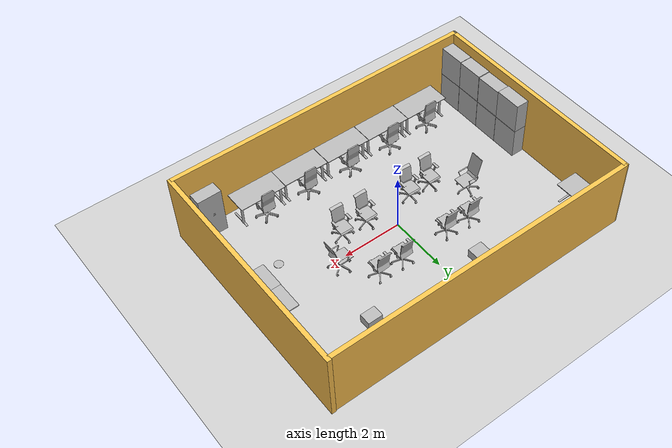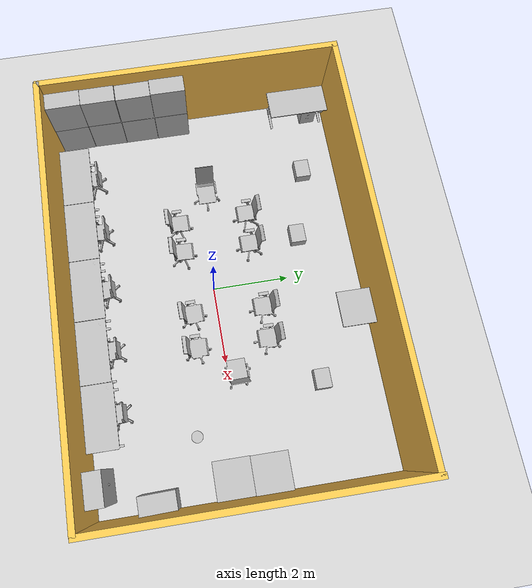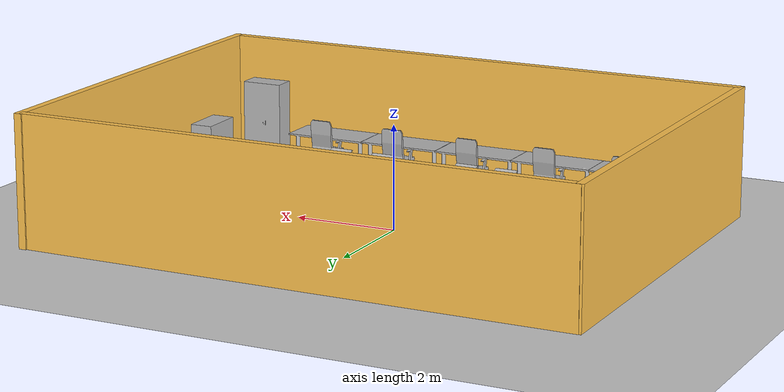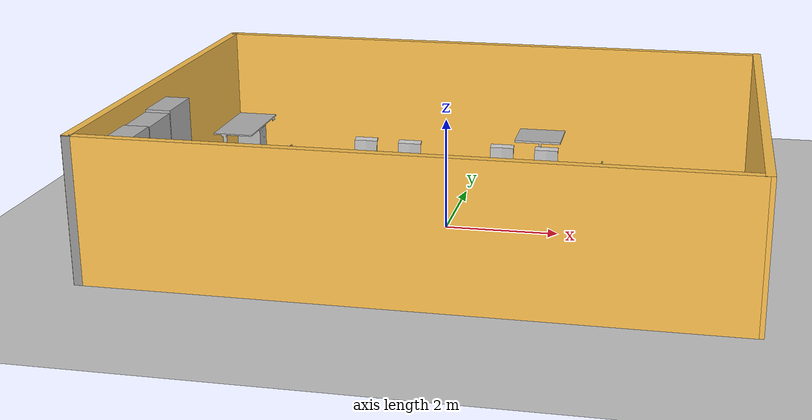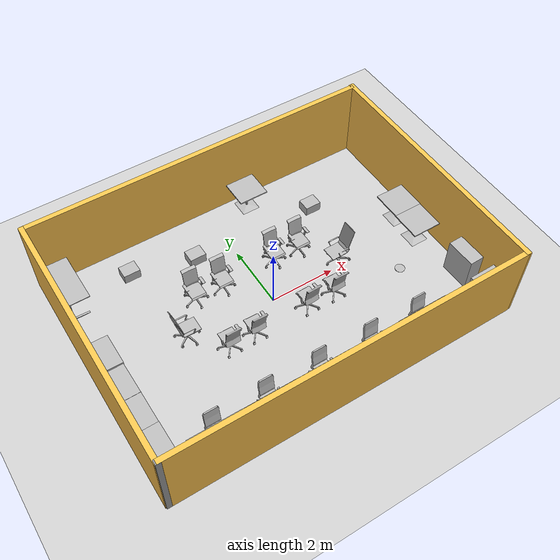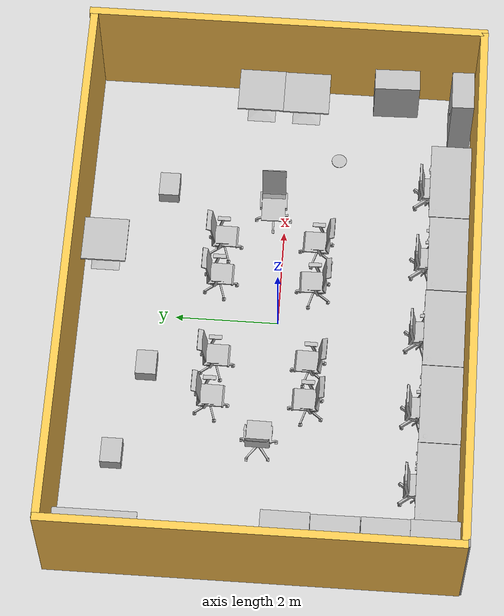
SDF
<sdf version="1.7">
 <world name="default">
  <plugin name="gazebo_ros_state" filename="libgazebo_ros_state.so">
   <ros><namespace>/gazebo</namespace></ros>
  </plugin>
  <light name="sun" type="directional">
   <pose>0 0 10 0 -0 0</pose>
   <diffuse>0.8 0.8 0.8 1</diffuse>
   <specular>0.2 0.2 0.2 1</specular>
   <attenuation>
    <range>1000</range>
    <constant>0.9</constant>
    <linear>0.01</linear>
    <quadratic>0.001</quadratic>
   </attenuation>
   <direction>-0.5 0.1 -0.9</direction>
   <spot><inner_angle>0</inner_angle><outer_angle>0</outer_angle><falloff>0</falloff></spot>
  </light>
  <model name="ground_plane">
   <static>1</static>
   <link name="link">
    <collision name="collision">
     <geometry><plane><normal>0 0 1</normal><size>100 100</size></plane></geometry>
     <surface><friction><ode><mu>100</mu><mu2>50</mu2></ode></friction></surface>
    </collision>
    <visual name="visual">
     <cast_shadows>0</cast_shadows>
     <geometry><plane><normal>0 0 1</normal><size>100 100</size></plane></geometry>
     <material>
      <script><uri>file://media/materials/scripts/gazebo.material</uri><name>Gazebo/Grey</name></script>
     </material>
    </visual>
   </link>
  </model>
  <gravity>0 0 -9.8</gravity>
  <magnetic_field>6e-06 2.3e-05 -4.2e-05</magnetic_field>
  <atmosphere type="adiabatic"/>
  <physics type="ode">
   <max_step_size>0.001</max_step_size>
   <real_time_factor>1</real_time_factor>
   <real_time_update_rate>1000</real_time_update_rate>
  </physics>
  <scene><ambient>0.4 0.4 0.4 1</ambient><background>0.7 0.7 0.7 1</background><shadows>1</shadows></scene>
  <audio><device>default</device></audio>
  <spherical_coordinates>
   <surface_model>EARTH_WGS84</surface_model>
   <latitude_deg>0</latitude_deg>
   <longitude_deg>0</longitude_deg>
   <elevation>0</elevation>
   <heading_deg>0</heading_deg>
  </spherical_coordinates>
  <model name="RRC4">
   <link name="Wall_0">
    <pose>-7.52045 -4.14704 0 0 -0 1.5708</pose>
    <inertial>
     <inertia><ixx>0</ixx><ixy>0</ixy><ixz>0</ixz><iyy>0</iyy><iyz>0</iyz><izz>0</izz></inertia>
     <mass>0</mass>
    </inertial>
    <visual name="Wall_0_Visual">
     <pose>0 0 1.25 0 -0 0</pose>
     <geometry><box><size>7.78779 0.15 2.5</size></box></geometry>
     <material>
      <script><uri>file://media/materials/scripts/gazebo.material</uri><name>Gazebo/Grey</name></script>
      <ambient>1 0.764706 0.305882 1</ambient>
      <shader type="pixel"/>
     </material>
     <meta><layer>0</layer></meta>
    </visual>
    <collision name="Wall_0_Collision">
     <pose>0 0 1.25 0 -0 0</pose>
     <geometry><box><size>7.78779 0.15 2.5</size></box></geometry>
     <surface>
      <friction>
       <ode><mu>1</mu><mu2>1</mu2><fdir1>0 0 0</fdir1><slip1>0</slip1><slip2>0</slip2></ode>
       <torsional>
        <coefficient>1</coefficient>
        <patch_radius>0</patch_radius>
        <surface_radius>0</surface_radius>
        <use_patch_radius>1</use_patch_radius>
        <ode><slip>0</slip></ode>
       </torsional>
      </friction>
      <bounce><restitution_coefficient>0</restitution_coefficient><threshold>1e+06</threshold></bounce>
      <contact>
       <collide_without_contact>0</collide_without_contact>
       <collide_without_contact_bitmask>1</collide_without_contact_bitmask>
       <collide_bitmask>1</collide_bitmask>
       <ode>
        <soft_cfm>0</soft_cfm>
        <soft_erp>0.2</soft_erp>
        <kp>1e+13</kp>
        <kd>1</kd>
        <max_vel>0.01</max_vel>
        <min_depth>0</min_depth>
       </ode>
       <bullet>
        <split_impulse>1</split_impulse>
        <split_impulse_penetration_threshold>-0.01</split_impulse_penetration_threshold>
        <soft_cfm>0</soft_cfm>
        <soft_erp>0.2</soft_erp>
        <kp>1e+13</kp>
        <kd>1</kd>
       </bullet>
      </contact>
     </surface>
    </collision>
   </link>
   <link name="Wall_1">
    <pose>-2.18528 -0.320606 0 0 -0 0</pose>
    <inertial>
     <inertia><ixx>0</ixx><ixy>0</ixy><ixz>0</ixz><iyy>0</iyy><iyz>0</iyz><izz>0</izz></inertia>
     <mass>0</mass>
    </inertial>
    <visual name="Wall_1_Visual">
     <pose>0 0 1.25 0 -0 0</pose>
     <geometry><box><size>10.7249 0.15 2.5</size></box></geometry>
     <material>
      <script><uri>file://media/materials/scripts/gazebo.material</uri><name>Gazebo/Grey</name></script>
      <ambient>1 0.764706 0.305882 1</ambient>
      <shader type="pixel"/>
     </material>
     <meta><layer>0</layer></meta>
    </visual>
    <collision name="Wall_1_Collision">
     <pose>0 0 1.25 0 -0 0</pose>
     <geometry><box><size>10.7249 0.15 2.5</size></box></geometry>
     <surface>
      <friction>
       <ode><mu>1</mu><mu2>1</mu2><fdir1>0 0 0</fdir1><slip1>0</slip1><slip2>0</slip2></ode>
       <torsional>
        <coefficient>1</coefficient>
        <patch_radius>0</patch_radius>
        <surface_radius>0</surface_radius>
        <use_patch_radius>1</use_patch_radius>
        <ode><slip>0</slip></ode>
       </torsional>
      </friction>
      <bounce><restitution_coefficient>0</restitution_coefficient><threshold>1e+06</threshold></bounce>
      <contact>
       <collide_without_contact>0</collide_without_contact>
       <collide_without_contact_bitmask>1</collide_without_contact_bitmask>
       <collide_bitmask>1</collide_bitmask>
       <ode>
        <soft_cfm>0</soft_cfm>
        <soft_erp>0.2</soft_erp>
        <kp>1e+13</kp>
        <kd>1</kd>
        <max_vel>0.01</max_vel>
        <min_depth>0</min_depth>
       </ode>
       <bullet>
        <split_impulse>1</split_impulse>
        <split_impulse_penetration_threshold>-0.01</split_impulse_penetration_threshold>
        <soft_cfm>0</soft_cfm>
        <soft_erp>0.2</soft_erp>
        <kp>1e+13</kp>
        <kd>1</kd>
       </bullet>
      </contact>
     </surface>
    </collision>
   </link>
   <link name="Wall_2">
    <pose>3.18117 -4.14297 0 0 0 -1.5708</pose>
    <inertial>
     <inertia><ixx>0</ixx><ixy>0</ixy><ixz>0</ixz><iyy>0</iyy><iyz>0</iyz><izz>0</izz></inertia>
     <mass>0</mass>
    </inertial>
    <visual name="Wall_2_Visual">
     <pose>0 0 1.25 0 -0 0</pose>
     <geometry><box><size>7.84893 0.15 2.5</size></box></geometry>
     <material>
      <script><uri>file://media/materials/scripts/gazebo.material</uri><name>Gazebo/Grey</name></script>
      <ambient>1 0.764706 0.305882 1</ambient>
      <shader type="pixel"/>
     </material>
     <meta><layer>0</layer></meta>
    </visual>
    <collision name="Wall_2_Collision">
     <pose>0 0 1.25 0 -0 0</pose>
     <geometry><box><size>7.84893 0.15 2.5</size></box></geometry>
     <surface>
      <friction>
       <ode><mu>1</mu><mu2>1</mu2><fdir1>0 0 0</fdir1><slip1>0</slip1><slip2>0</slip2></ode>
       <torsional>
        <coefficient>1</coefficient>
        <patch_radius>0</patch_radius>
        <surface_radius>0</surface_radius>
        <use_patch_radius>1</use_patch_radius>
        <ode><slip>0</slip></ode>
       </torsional>
      </friction>
      <bounce><restitution_coefficient>0</restitution_coefficient><threshold>1e+06</threshold></bounce>
      <contact>
       <collide_without_contact>0</collide_without_contact>
       <collide_without_contact_bitmask>1</collide_without_contact_bitmask>
       <collide_bitmask>1</collide_bitmask>
       <ode>
        <soft_cfm>0</soft_cfm>
        <soft_erp>0.2</soft_erp>
        <kp>1e+13</kp>
        <kd>1</kd>
        <max_vel>0.01</max_vel>
        <min_depth>0</min_depth>
       </ode>
       <bullet>
        <split_impulse>1</split_impulse>
        <split_impulse_penetration_threshold>-0.01</split_impulse_penetration_threshold>
        <soft_cfm>0</soft_cfm>
        <soft_erp>0.2</soft_erp>
        <kp>1e+13</kp>
        <kd>1</kd>
       </bullet>
      </contact>
     </surface>
    </collision>
   </link>
   <link name="Wall_3">
    <pose>-2.17773 -7.99999 0 0 -0 3.14159</pose>
    <inertial>
     <inertia><ixx>0</ixx><ixy>0</ixy><ixz>0</ixz><iyy>0</iyy><iyz>0</iyz><izz>0</izz></inertia>
     <mass>0</mass>
    </inertial>
    <visual name="Wall_3_Visual">
     <pose>0 0 1.25 0 -0 0</pose>
     <geometry><box><size>10.7153 0.15 2.5</size></box></geometry>
     <material>
      <script><uri>file://media/materials/scripts/gazebo.material</uri><name>Gazebo/Grey</name></script>
      <ambient>1 0.764706 0.305882 1</ambient>
      <shader type="pixel"/>
     </material>
     <meta><layer>0</layer></meta>
    </visual>
    <collision name="Wall_3_Collision">
     <pose>0 0 1.25 0 -0 0</pose>
     <geometry><box><size>10.7153 0.15 2.5</size></box></geometry>
     <surface>
      <friction>
       <ode><mu>1</mu><mu2>1</mu2><fdir1>0 0 0</fdir1><slip1>0</slip1><slip2>0</slip2></ode>
       <torsional>
        <coefficient>1</coefficient>
        <patch_radius>0</patch_radius>
        <surface_radius>0</surface_radius>
        <use_patch_radius>1</use_patch_radius>
        <ode><slip>0</slip></ode>
       </torsional>
      </friction>
      <bounce><restitution_coefficient>0</restitution_coefficient><threshold>1e+06</threshold></bounce>
      <contact>
       <collide_without_contact>0</collide_without_contact>
       <collide_without_contact_bitmask>1</collide_without_contact_bitmask>
       <collide_bitmask>1</collide_bitmask>
       <ode>
        <soft_cfm>0</soft_cfm>
        <soft_erp>0.2</soft_erp>
        <kp>1e+13</kp>
        <kd>1</kd>
        <max_vel>0.01</max_vel>
        <min_depth>0</min_depth>
       </ode>
       <bullet>
        <split_impulse>1</split_impulse>
        <split_impulse_penetration_threshold>-0.01</split_impulse_penetration_threshold>
        <soft_cfm>0</soft_cfm>
        <soft_erp>0.2</soft_erp>
        <kp>1e+13</kp>
        <kd>1</kd>
       </bullet>
      </contact>
     </surface>
    </collision>
   </link>
   <link name="Wall_4">
    <pose>-7.5 -8 0 0 -0 0</pose>
    <visual name="Wall_4_Visual">
     <pose>0 0 1.25 0 -0 0</pose>
     <geometry><box><size>0.15 0.15 2.5</size></box></geometry>
     <material>
      <script><uri>file://media/materials/scripts/gazebo.material</uri><name>Gazebo/Grey</name></script>
      <ambient>1 1 1 1</ambient>
      <shader type="pixel"/>
     </material>
     <meta><layer>0</layer></meta>
    </visual>
    <collision name="Wall_4_Collision">
     <pose>0 0 1.25 0 -0 0</pose>
     <geometry><box><size>0.15 0.15 2.5</size></box></geometry>
     <surface>
      <friction>
       <ode><mu>1</mu><mu2>1</mu2><fdir1>0 0 0</fdir1><slip1>0</slip1><slip2>0</slip2></ode>
       <torsional>
        <coefficient>1</coefficient>
        <patch_radius>0</patch_radius>
        <surface_radius>0</surface_radius>
        <use_patch_radius>1</use_patch_radius>
        <ode><slip>0</slip></ode>
       </torsional>
      </friction>
      <bounce><restitution_coefficient>0</restitution_coefficient><threshold>1e+06</threshold></bounce>
      <contact>
       <collide_without_contact>0</collide_without_contact>
       <collide_without_contact_bitmask>1</collide_without_contact_bitmask>
       <collide_bitmask>1</collide_bitmask>
       <ode>
        <soft_cfm>0</soft_cfm>
        <soft_erp>0.2</soft_erp>
        <kp>1e+13</kp>
        <kd>1</kd>
        <max_vel>0.01</max_vel>
        <min_depth>0</min_depth>
       </ode>
       <bullet>
        <split_impulse>1</split_impulse>
        <split_impulse_penetration_threshold>-0.01</split_impulse_penetration_threshold>
        <soft_cfm>0</soft_cfm>
        <soft_erp>0.2</soft_erp>
        <kp>1e+13</kp>
        <kd>1</kd>
       </bullet>
      </contact>
     </surface>
    </collision>
   </link>
   <static>1</static>
   <pose>2.21141 4.30063 0 0 -0 0</pose>
  </model>
  <model name="WhiteCabinet">
   <static>1</static>
   <link name="body">
    <visual name="visual">
     <geometry><mesh><uri>model://WhiteCabinet/meshes/WhiteCabinet.obj</uri></mesh></geometry>
    </visual>
    <collision name="collision">
     <geometry><mesh><uri>model://WhiteCabinet/meshes/WhiteCabinet.obj</uri></mesh></geometry>
    </collision>
   </link>
   <pose>-4.98465 -3.15977 -0.00142 -0.003535 -0 1.57017</pose>
  </model>
  <model name="WhiteCabinet_0">
   <static>1</static>
   <link name="body">
    <visual name="visual">
     <geometry><mesh><uri>model://WhiteCabinet/meshes/WhiteCabinet.obj</uri></mesh></geometry>
    </visual>
    <collision name="collision">
     <geometry><mesh><uri>model://WhiteCabinet/meshes/WhiteCabinet.obj</uri></mesh></geometry>
    </collision>
   </link>
   <pose>-4.98701 -2.25467 0 0 -0 1.56323</pose>
  </model>
  <model name="WhiteCabinet_1">
   <static>1</static>
   <link name="body">
    <visual name="visual">
     <geometry><mesh><uri>model://WhiteCabinet/meshes/WhiteCabinet.obj</uri></mesh></geometry>
    </visual>
    <collision name="collision">
     <geometry><mesh><uri>model://WhiteCabinet/meshes/WhiteCabinet.obj</uri></mesh></geometry>
    </collision>
   </link>
   <pose>-4.98301 -1.35009 0 0 -0 1.56816</pose>
  </model>
  <model name="WhiteCabinet_2">
   <static>1</static>
   <link name="body">
    <visual name="visual">
     <geometry><mesh><uri>model://WhiteCabinet/meshes/WhiteCabinet.obj</uri></mesh></geometry>
    </visual>
    <collision name="collision">
     <geometry><mesh><uri>model://WhiteCabinet/meshes/WhiteCabinet.obj</uri></mesh></geometry>
    </collision>
   </link>
   <pose>-4.98247 -0.446698 0 0 -0 1.57058</pose>
  </model>
  <model name="WhiteCabinet_3">
   <static>1</static>
   <link name="body">
    <visual name="visual">
     <geometry><mesh><uri>model://WhiteCabinet/meshes/WhiteCabinet.obj</uri></mesh></geometry>
    </visual>
    <collision name="collision">
     <geometry><mesh><uri>model://WhiteCabinet/meshes/WhiteCabinet.obj</uri></mesh></geometry>
    </collision>
   </link>
   <pose>-4.9866 -3.16208 1.06765 0 -0 1.57949</pose>
  </model>
  <model name="WhiteCabinet_4">
   <static>1</static>
   <link name="body">
    <visual name="visual">
     <geometry><mesh><uri>model://WhiteCabinet/meshes/WhiteCabinet.obj</uri></mesh></geometry>
    </visual>
    <collision name="collision">
     <geometry><mesh><uri>model://WhiteCabinet/meshes/WhiteCabinet.obj</uri></mesh></geometry>
    </collision>
   </link>
   <pose>-4.9942 -2.27058 1.0512 0 -0 1.57462</pose>
  </model>
  <model name="WhiteCabinet_5">
   <static>1</static>
   <link name="body">
    <visual name="visual">
     <geometry><mesh><uri>model://WhiteCabinet/meshes/WhiteCabinet.obj</uri></mesh></geometry>
    </visual>
    <collision name="collision">
     <geometry><mesh><uri>model://WhiteCabinet/meshes/WhiteCabinet.obj</uri></mesh></geometry>
    </collision>
   </link>
   <pose>-4.99705 -1.35688 1.03296 0 -0 1.58115</pose>
  </model>
  <model name="WhiteCabinet_6">
   <static>1</static>
   <link name="body">
    <visual name="visual">
     <geometry><mesh><uri>model://WhiteCabinet/meshes/WhiteCabinet.obj</uri></mesh></geometry>
    </visual>
    <collision name="collision">
     <geometry><mesh><uri>model://WhiteCabinet/meshes/WhiteCabinet.obj</uri></mesh></geometry>
    </collision>
   </link>
   <pose>-4.99043 -0.451044 1.07867 0 -0 1.56912</pose>
  </model>
  <model name="AdjTable">
   <static>1</static>
   <link name="body">
    <visual name="visual">
     <geometry><mesh><uri>model://AdjTable/meshes/AdjTable.obj</uri></mesh></geometry>
    </visual>
    <collision name="collision">
     <geometry><mesh><uri>model://AdjTable/meshes/AdjTable_Col.obj</uri></mesh></geometry>
    </collision>
   </link>
   <pose>-4.8379 3.10819 0 0 -0 1.57224</pose>
  </model>
  <model name="OfficeChairBlue">
   <static>1</static>
   <link name="body">
    <visual name="visual"><geometry><mesh><uri>model://Drawer/meshes/Drawer.obj</uri></mesh></geometry></visual>
    <collision name="collision">
     <geometry><mesh><uri>model://Drawer/meshes/Drawer.obj</uri></mesh></geometry>
    </collision>
   </link>
   <pose>-4.82833 3.42883 0 0 -0 1.58972</pose>
  </model>
  <model name="AdjTable_0">
   <static>1</static>
   <link name="body">
    <visual name="visual">
     <geometry><mesh><uri>model://AdjTable/meshes/AdjTable.obj</uri></mesh></geometry>
    </visual>
    <collision name="collision">
     <geometry><mesh><uri>model://AdjTable/meshes/AdjTable_Col.obj</uri></mesh></geometry>
    </collision>
   </link>
   <pose>-3.47629 -3.21979 0 0 -0 0</pose>
  </model>
  <model name="AdjTable_1">
   <static>1</static>
   <link name="body">
    <visual name="visual">
     <geometry><mesh><uri>model://AdjTable/meshes/AdjTable.obj</uri></mesh></geometry>
    </visual>
    <collision name="collision">
     <geometry><mesh><uri>model://AdjTable/meshes/AdjTable_Col.obj</uri></mesh></geometry>
    </collision>
   </link>
   <pose>-1.8698 -3.22694 0 0 -0 0</pose>
  </model>
  <model name="AdjTable_2">
   <static>1</static>
   <link name="body">
    <visual name="visual">
     <geometry><mesh><uri>model://AdjTable/meshes/AdjTable.obj</uri></mesh></geometry>
    </visual>
    <collision name="collision">
     <geometry><mesh><uri>model://AdjTable/meshes/AdjTable_Col.obj</uri></mesh></geometry>
    </collision>
   </link>
   <pose>-0.263335 -3.23408 0 0 -0 0</pose>
  </model>
  <model name="AdjTable_3">
   <static>1</static>
   <link name="body">
    <visual name="visual">
     <geometry><mesh><uri>model://AdjTable/meshes/AdjTable.obj</uri></mesh></geometry>
    </visual>
    <collision name="collision">
     <geometry><mesh><uri>model://AdjTable/meshes/AdjTable_Col.obj</uri></mesh></geometry>
    </collision>
   </link>
   <pose>1.34689 -3.25016 0 0 -0 0</pose>
  </model>
  <model name="AdjTable_4">
   <static>1</static>
   <link name="body">
    <visual name="visual">
     <geometry><mesh><uri>model://AdjTable/meshes/AdjTable.obj</uri></mesh></geometry>
    </visual>
    <collision name="collision">
     <geometry><mesh><uri>model://AdjTable/meshes/AdjTable_Col.obj</uri></mesh></geometry>
    </collision>
   </link>
   <pose>2.95483 -3.22563 0 0 -0 0</pose>
  </model>
  <model name="OfficeChairBlue_0">
   <static>1</static>
   <link name="body">
    <visual name="visual">
     <geometry><mesh><uri>model://OfficeChairBlue/meshes/OfficeChairBlue.obj</uri></mesh></geometry>
    </visual>
    <collision name="collision">
     <geometry><mesh><uri>model://OfficeChairBlue/meshes/OfficeChairBlue_Col.obj</uri></mesh></geometry>
    </collision>
   </link>
   <pose>-3.44939 -2.94333 0 0 -0 0</pose>
  </model>
  <model name="OfficeChairBlue_1">
   <static>1</static>
   <link name="body">
    <visual name="visual">
     <geometry><mesh><uri>model://OfficeChairBlue/meshes/OfficeChairBlue.obj</uri></mesh></geometry>
    </visual>
    <collision name="collision">
     <geometry><mesh><uri>model://OfficeChairBlue/meshes/OfficeChairBlue_Col.obj</uri></mesh></geometry>
    </collision>
   </link>
   <pose>-1.866 -2.90648 0 0 -0 0</pose>
  </model>
  <model name="OfficeChairBlue_2">
   <static>1</static>
   <link name="body">
    <visual name="visual">
     <geometry><mesh><uri>model://OfficeChairBlue/meshes/OfficeChairBlue.obj</uri></mesh></geometry>
    </visual>
    <collision name="collision">
     <geometry><mesh><uri>model://OfficeChairBlue/meshes/OfficeChairBlue_Col.obj</uri></mesh></geometry>
    </collision>
   </link>
   <pose>-0.258058 -2.90648 0 0 -0 0</pose>
  </model>
  <model name="OfficeChairBlue_3">
   <static>1</static>
   <link name="body">
    <visual name="visual">
     <geometry><mesh><uri>model://OfficeChairBlue/meshes/OfficeChairBlue.obj</uri></mesh></geometry>
    </visual>
    <collision name="collision">
     <geometry><mesh><uri>model://OfficeChairBlue/meshes/OfficeChairBlue_Col.obj</uri></mesh></geometry>
    </collision>
   </link>
   <pose>1.34989 -2.94333 0 0 -0 0</pose>
  </model>
  <model name="OfficeChairBlue_4">
   <static>1</static>
   <link name="body">
    <visual name="visual">
     <geometry><mesh><uri>model://OfficeChairBlue/meshes/OfficeChairBlue.obj</uri></mesh></geometry>
    </visual>
    <collision name="collision">
     <geometry><mesh><uri>model://OfficeChairBlue/meshes/OfficeChairBlue_Col.obj</uri></mesh></geometry>
    </collision>
   </link>
   <pose>2.92096 -2.95559 0 0 -0 0</pose>
  </model>
  <model name="OfficeChairBlack">
   <static>1</static>
   <link name="body">
    <visual name="visual">
     <geometry><mesh><uri>model://OfficeChairBlack/meshes/OfficeChairBlack.obj</uri></mesh></geometry>
    </visual>
    <collision name="collision">
     <geometry><mesh><uri>model://OfficeChairBlack/meshes/OfficeChairBlack_Col.obj</uri></mesh></geometry>
    </collision>
   </link>
   <pose>-2.64308 0.194592 0 0 -0 1.5596</pose>
  </model>
  <model name="OfficeChairBlack_0">
   <static>1</static>
   <link name="body">
    <visual name="visual">
     <geometry><mesh><uri>model://OfficeChairBlack/meshes/OfficeChairBlack.obj</uri></mesh></geometry>
    </visual>
    <collision name="collision">
     <geometry><mesh><uri>model://OfficeChairBlack/meshes/OfficeChairBlack_Col.obj</uri></mesh></geometry>
    </collision>
   </link>
   <pose>2.36867 0.23759 0 0 0 -1.55</pose>
  </model>
  <model name="OfficeChairGrey">
   <static>1</static>
   <link name="body">
    <visual name="visual">
     <geometry><mesh><uri>model://OfficeChairGrey/meshes/OfficeChairGrey.obj</uri></mesh></geometry>
    </visual>
    <collision name="collision">
     <geometry><mesh><uri>model://OfficeChairGrey/meshes/OfficeChairGrey_Col.obj</uri></mesh></geometry>
    </collision>
   </link>
   <pose>-1.83699 1.06004 0 0 -0 0</pose>
  </model>
  <model name="OfficeChairGrey_0">
   <static>1</static>
   <link name="body">
    <visual name="visual">
     <geometry><mesh><uri>model://OfficeChairGrey/meshes/OfficeChairGrey.obj</uri></mesh></geometry>
    </visual>
    <collision name="collision">
     <geometry><mesh><uri>model://OfficeChairGrey/meshes/OfficeChairGrey_Col.obj</uri></mesh></geometry>
    </collision>
   </link>
   <pose>-0.980071 1.01361 0 0 -0 0</pose>
  </model>
  <model name="OfficeChairGrey_1">
   <static>1</static>
   <link name="body">
    <visual name="visual">
     <geometry><mesh><uri>model://OfficeChairGrey/meshes/OfficeChairGrey.obj</uri></mesh></geometry>
    </visual>
    <collision name="collision">
     <geometry><mesh><uri>model://OfficeChairGrey/meshes/OfficeChairGrey_Col.obj</uri></mesh></geometry>
    </collision>
   </link>
   <pose>-0.999896 -0.552157 0 0 -0 3.11791</pose>
  </model>
  <model name="OfficeChairGrey_2">
   <static>1</static>
   <link name="body">
    <visual name="visual">
     <geometry><mesh><uri>model://OfficeChairGrey/meshes/OfficeChairGrey.obj</uri></mesh></geometry>
    </visual>
    <collision name="collision">
     <geometry><mesh><uri>model://OfficeChairGrey/meshes/OfficeChairGrey_Col.obj</uri></mesh></geometry>
    </collision>
   </link>
   <pose>-1.80808 -0.553924 0 0 0 -3.14069</pose>
  </model>
  <model name="OfficeChairGrey_3">
   <static>1</static>
   <link name="body">
    <visual name="visual">
     <geometry><mesh><uri>model://OfficeChairGrey/meshes/OfficeChairGrey.obj</uri></mesh></geometry>
    </visual>
    <collision name="collision">
     <geometry><mesh><uri>model://OfficeChairGrey/meshes/OfficeChairGrey_Col.obj</uri></mesh></geometry>
    </collision>
   </link>
   <pose>0.706949 -0.539802 0 0 0 -3.11799</pose>
  </model>
  <model name="OfficeChairGrey_4">
   <static>1</static>
   <link name="body">
    <visual name="visual">
     <geometry><mesh><uri>model://OfficeChairGrey/meshes/OfficeChairGrey.obj</uri></mesh></geometry>
    </visual>
    <collision name="collision">
     <geometry><mesh><uri>model://OfficeChairGrey/meshes/OfficeChairGrey_Col.obj</uri></mesh></geometry>
    </collision>
   </link>
   <pose>1.59627 -0.556479 0 0 -0 3.12919</pose>
  </model>
  <model name="OfficeChairGrey_5">
   <static>1</static>
   <link name="body">
    <visual name="visual">
     <geometry><mesh><uri>model://OfficeChairGrey/meshes/OfficeChairGrey.obj</uri></mesh></geometry>
    </visual>
    <collision name="collision">
     <geometry><mesh><uri>model://OfficeChairGrey/meshes/OfficeChairGrey_Col.obj</uri></mesh></geometry>
    </collision>
   </link>
   <pose>0.774862 1.06967 0 0 -0 0</pose>
  </model>
  <model name="OfficeChairGrey_6">
   <static>1</static>
   <link name="body">
    <visual name="visual">
     <geometry><mesh><uri>model://OfficeChairGrey/meshes/OfficeChairGrey.obj</uri></mesh></geometry>
    </visual>
    <collision name="collision">
     <geometry><mesh><uri>model://OfficeChairGrey/meshes/OfficeChairGrey_Col.obj</uri></mesh></geometry>
    </collision>
   </link>
   <pose>1.60821 1.04509 0 0 -0 0</pose>
  </model>
  <model name="WhiteCabinet_7">
   <static>1</static>
   <link name="body">
    <visual name="visual">
     <geometry><mesh><uri>model://WhiteCabinet/meshes/WhiteCabinet.obj</uri></mesh></geometry>
    </visual>
    <collision name="collision">
     <geometry><mesh><uri>model://WhiteCabinet/meshes/WhiteCabinet.obj</uri></mesh></geometry>
    </collision>
   </link>
   <pose>5.07858 -2.07247 0 0 0 -1.54788</pose>
  </model>
  <model name="MetalCabinet">
   <static>1</static>
   <link name="body">
    <visual name="visual">
     <geometry><mesh><uri>model://MetalCabinet/meshes/MetalCabinet.obj</uri></mesh></geometry>
    </visual>
    <collision name="collision">
     <geometry><mesh><uri>model://MetalCabinet/meshes/MetalCabinet.obj</uri></mesh></geometry>
    </collision>
   </link>
   <pose>4.5579 -3.36197 -4e-06 1.2e-05 0.000863 -3.12816</pose>
  </model>
  <model name="cafe_table">
   <static>1</static>
   <link name="link">
    <collision name="surface">
     <pose>0 0 0.755 0 -0 0</pose>
     <geometry><box><size>0.913 0.913 0.04</size></box></geometry>
    </collision>
    <collision name="column">
     <pose>0 0 0.37 0 -0 0</pose>
     <geometry><box><size>0.042 0.042 0.74</size></box></geometry>
    </collision>
    <collision name="base">
     <pose>0 0 0.02 0 -0 0</pose>
     <geometry><box><size>0.56 0.56 0.04</size></box></geometry>
    </collision>
    <visual name="visual">
     <geometry><mesh><uri>model://cafe_table/meshes/cafe_table.dae</uri></mesh></geometry>
    </visual>
   </link>
   <pose>4.83221 -0.270792 0 0 -0 0</pose>
  </model>
  <model name="cafe_table_0">
   <static>1</static>
   <link name="link">
    <collision name="surface">
     <pose>0 0 0.755 0 -0 0</pose>
     <geometry><box><size>0.913 0.913 0.04</size></box></geometry>
    </collision>
    <collision name="column">
     <pose>0 0 0.37 0 -0 0</pose>
     <geometry><box><size>0.042 0.042 0.74</size></box></geometry>
    </collision>
    <collision name="base">
     <pose>0 0 0.02 0 -0 0</pose>
     <geometry><box><size>0.56 0.56 0.04</size></box></geometry>
    </collision>
    <visual name="visual">
     <geometry><mesh><uri>model://cafe_table/meshes/cafe_table.dae</uri></mesh></geometry>
    </visual>
   </link>
   <pose>4.84113 0.643341 0 0 -0 0</pose>
  </model>
  <model name="cafe_table_1">
   <static>1</static>
   <link name="link">
    <collision name="surface">
     <pose>0 0 0.755 0 -0 0</pose>
     <geometry><box><size>0.913 0.913 0.04</size></box></geometry>
    </collision>
    <collision name="column">
     <pose>0 0 0.37 0 -0 0</pose>
     <geometry><box><size>0.042 0.042 0.74</size></box></geometry>
    </collision>
    <collision name="base">
     <pose>0 0 0.02 0 -0 0</pose>
     <geometry><box><size>0.56 0.56 0.04</size></box></geometry>
    </collision>
    <visual name="visual">
     <geometry><mesh><uri>model://cafe_table/meshes/cafe_table.dae</uri></mesh></geometry>
    </visual>
   </link>
   <pose>1.23894 3.49186 0 0 -0 0</pose>
  </model>
  <model name="target_cone">
   <static>0</static>
   <link name="body">
    <visual name="visual">
     <geometry><cylinder><radius>0.15</radius><length>0.01</length></cylinder></geometry>
    </visual>
    <collision name="collision">
     <geometry><cylinder><radius>0.15</radius><length>0.01</length></cylinder></geometry>
     <material>
      <script><uri>file://media/materials/scripts/gazebo.material</uri><name>Gazebo/Red</name></script>
      <ambient>1 0 0 1</ambient>
     </material>
    </collision>
    <inertial>
     <inertia><ixx>1</ixx><ixy>0</ixy><ixz>0</ixz><iyy>1</iyy><iyz>0</iyz><izz>1</izz></inertia>
     <mass>1</mass>
    </inertial>
   </link>
   <pose>3.73413 -0.996822 0.005 0 -0 0</pose>
  </model>
  <model name="cardboard_box">
   <pose>-3.01525 2.96569 0.149 0 -0 0</pose>
   <link name="link">
    <inertial>
     <mass>2</mass>
     <inertia>
      <ixx>0.0416667</ixx>
      <ixy>0</ixy>
      <ixz>0</ixz>
      <iyy>0.0566667</iyy>
      <iyz>0</iyz>
      <izz>0.0683333</izz>
     </inertia>
    </inertial>
    <collision name="collision">
     <geometry><box><size>0.5 0.4 0.3</size></box></geometry>
     <surface>
      <friction><ode><mu>1</mu><mu2>1</mu2></ode></friction>
      <contact><ode><kp>1e+07</kp><kd>1</kd><min_depth>0.001</min_depth><max_vel>0.1</max_vel></ode></contact>
     </surface>
    </collision>
    <visual name="visual">
     <pose>0 0 -0.15 0 -0 0</pose>
     <geometry>
      <mesh><uri>model://cardboard_box/meshes/cardboard_box.dae</uri><scale>1.25932 1.00745 0.755591</scale></mesh>
     </geometry>
    </visual>
   </link>
  </model>
  <model name="cardboard_box_0">
   <pose>-1.13252 2.46756 0.149021 2e-06 -2e-06 -0</pose>
   <link name="link">
    <inertial>
     <mass>2</mass>
     <inertia>
      <ixx>0.0416667</ixx>
      <ixy>0</ixy>
      <ixz>0</ixz>
      <iyy>0.0566667</iyy>
      <iyz>0</iyz>
      <izz>0.0683333</izz>
     </inertia>
    </inertial>
    <collision name="collision">
     <geometry><box><size>0.5 0.4 0.3</size></box></geometry>
     <surface>
      <friction><ode><mu>1</mu><mu2>1</mu2></ode></friction>
      <contact><ode><kp>1e+07</kp><kd>1</kd><min_depth>0.001</min_depth><max_vel>0.1</max_vel></ode></contact>
     </surface>
    </collision>
    <visual name="visual">
     <pose>0 0 -0.15 0 -0 0</pose>
     <geometry>
      <mesh><uri>model://cardboard_box/meshes/cardboard_box.dae</uri><scale>1.25932 1.00745 0.755591</scale></mesh>
     </geometry>
    </visual>
   </link>
  </model>
  <model name="cardboard_box_1">
   <pose>2.81465 2.35337 0.14951 2e-06 -2e-06 -0</pose>
   <link name="link">
    <inertial>
     <mass>2</mass>
     <inertia>
      <ixx>0.0416667</ixx>
      <ixy>0</ixy>
      <ixz>0</ixz>
      <iyy>0.0566667</iyy>
      <iyz>0</iyz>
      <izz>0.0683333</izz>
     </inertia>
    </inertial>
    <collision name="collision">
     <geometry><box><size>0.5 0.4 0.3</size></box></geometry>
     <surface>
      <friction><ode><mu>1</mu><mu2>1</mu2></ode></friction>
      <contact><ode><kp>1e+07</kp><kd>1</kd><min_depth>0.001</min_depth><max_vel>0.1</max_vel></ode></contact>
     </surface>
    </collision>
    <visual name="visual">
     <pose>0 0 -0.15 0 -0 0</pose>
     <geometry>
      <mesh><uri>model://cardboard_box/meshes/cardboard_box.dae</uri><scale>1.25932 1.00745 0.755591</scale></mesh>
     </geometry>
    </visual>
   </link>
  </model>
 </world>
</sdf>
